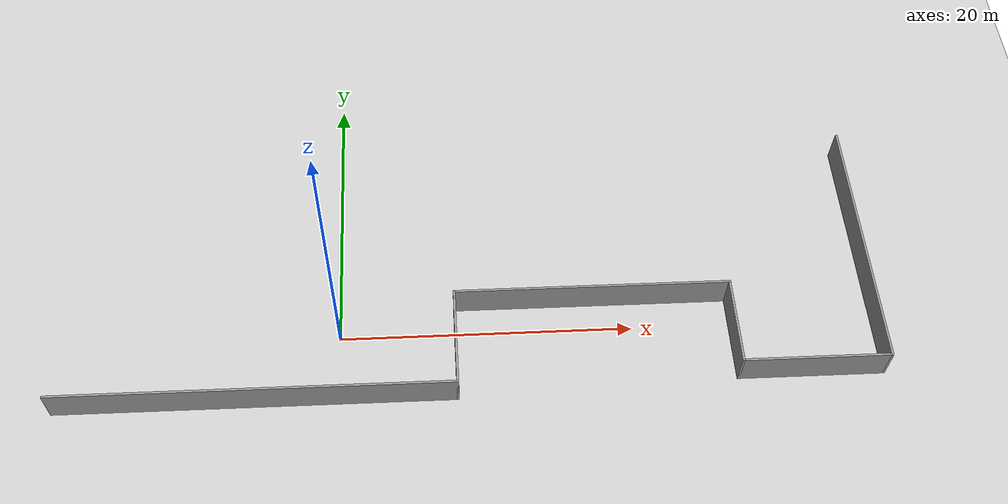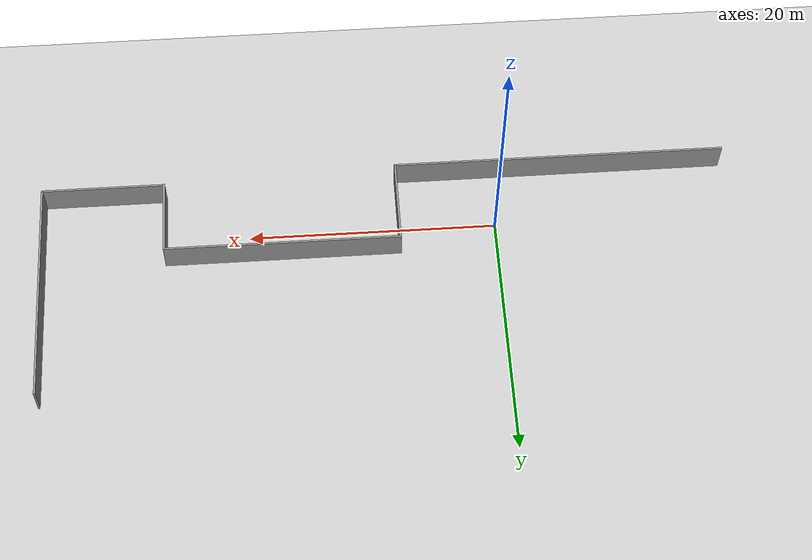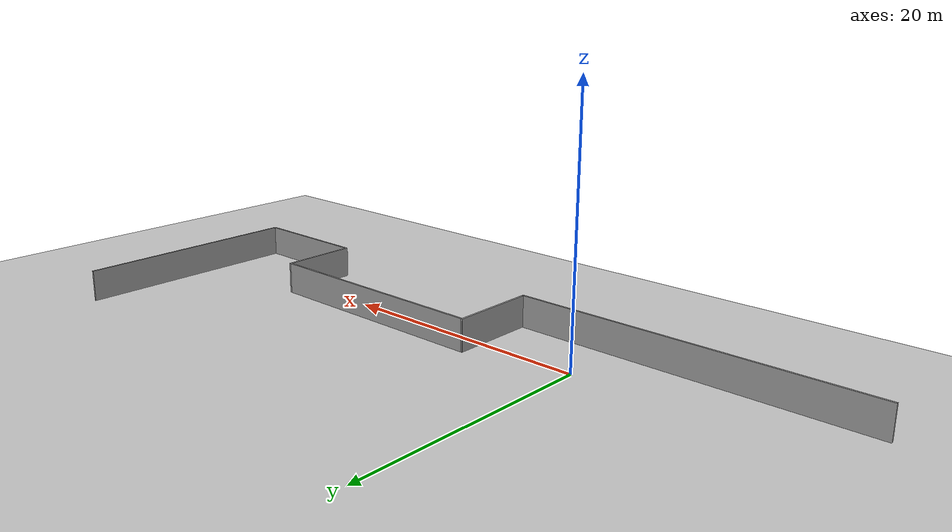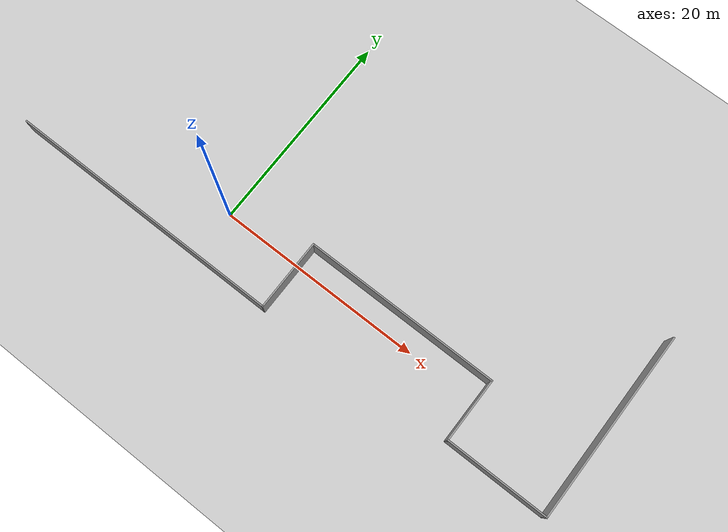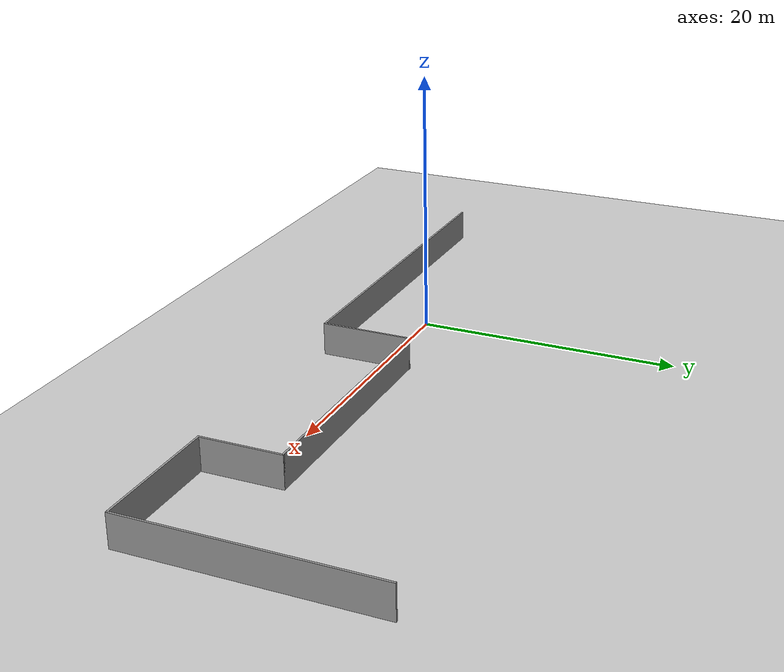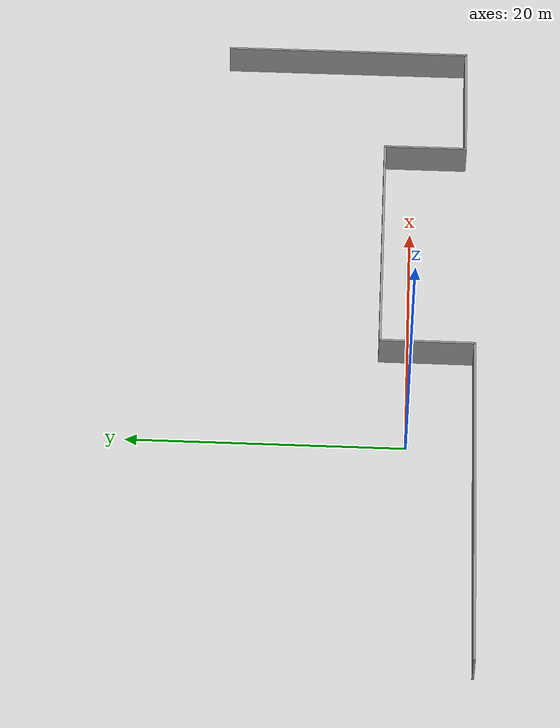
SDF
<sdf version="1.6">
 <world name="default">
  <light name="sun" type="directional">
   <pose>0 0 10 0 -0 0</pose>
   <diffuse>0.8 0.8 0.8 1</diffuse>
   <specular>0.2 0.2 0.2 1</specular>
   <attenuation>
    <range>1000</range>
    <constant>0.9</constant>
    <linear>0.01</linear>
    <quadratic>0.001</quadratic>
   </attenuation>
   <direction>-0.5 0.1 -0.9</direction>
  </light>
  <model name="ground_plane">
   <static>1</static>
   <link name="link">
    <collision name="collision">
     <geometry><plane><normal>0 0 1</normal><size>100 100</size></plane></geometry>
     <surface>
      <contact><collide_bitmask>65535</collide_bitmask></contact>
      <friction><ode><mu>100</mu><mu2>50</mu2></ode></friction>
     </surface>
    </collision>
    <visual name="visual">
     <cast_shadows>0</cast_shadows>
     <geometry><plane><normal>0 0 1</normal><size>100 100</size></plane></geometry>
     <material>
      <script><uri>file://media/materials/scripts/gazebo.material</uri><name>Gazebo/Grey</name></script>
     </material>
    </visual>
   </link>
  </model>
  <gravity>0 0 -9.8</gravity>
  <magnetic_field>6e-06 2.3e-05 -4.2e-05</magnetic_field>
  <atmosphere type="adiabatic"/>
  <physics name="default_physics" default="0" type="ode">
   <max_step_size>0.001</max_step_size>
   <real_time_factor>1</real_time_factor>
   <real_time_update_rate>1000</real_time_update_rate>
  </physics>
  <scene><ambient>0.4 0.4 0.4 1</ambient><background>0.7 0.7 0.7 1</background><shadows>1</shadows></scene>
  <audio><device>default</device></audio>
  <spherical_coordinates>
   <surface_model>EARTH_WGS84</surface_model>
   <latitude_deg>0</latitude_deg>
   <longitude_deg>0</longitude_deg>
   <elevation>0</elevation>
   <heading_deg>0</heading_deg>
  </spherical_coordinates>
  <model name="build3">
   <pose>8.79812 4.73072 0 0 -0 0</pose>
   <link name="Wall_11">
    <collision name="Wall_11_Collision">
     <geometry><box><size>27 0.15 2.5</size></box></geometry>
     <pose>0 0 1.25 0 -0 0</pose>
    </collision>
    <visual name="Wall_11_Visual">
     <pose>0 0 1.25 0 -0 0</pose>
     <geometry><box><size>27 0.15 2.5</size></box></geometry>
     <material>
      <script><uri>file://media/materials/scripts/gazebo.material</uri><name>Gazebo/Grey</name></script>
      <ambient>1 1 1 1</ambient>
     </material>
     <meta><layer>0</layer></meta>
    </visual>
    <pose>-14.35 -9.55 0 0 -0 0</pose>
   </link>
   <link name="Wall_12">
    <collision name="Wall_12_Collision">
     <geometry><box><size>7 0.15 2.5</size></box></geometry>
     <pose>0 0 1.25 0 -0 0</pose>
    </collision>
    <visual name="Wall_12_Visual">
     <pose>0 0 1.25 0 -0 0</pose>
     <geometry><box><size>7 0.15 2.5</size></box></geometry>
     <material>
      <script><uri>file://media/materials/scripts/gazebo.material</uri><name>Gazebo/Grey</name></script>
      <ambient>1 1 1 1</ambient>
     </material>
     <meta><layer>0</layer></meta>
    </visual>
    <pose>-0.925 -6.125 0 0 -0 1.5708</pose>
   </link>
   <link name="Wall_13">
    <collision name="Wall_13_Collision">
     <geometry><box><size>19 0.15 2.5</size></box></geometry>
     <pose>0 0 1.25 0 -0 0</pose>
    </collision>
    <visual name="Wall_13_Visual">
     <pose>0 0 1.25 0 -0 0</pose>
     <geometry><box><size>19 0.15 2.5</size></box></geometry>
     <material>
      <script><uri>file://media/materials/scripts/gazebo.material</uri><name>Gazebo/Grey</name></script>
      <ambient>1 1 1 1</ambient>
     </material>
     <meta><layer>0</layer></meta>
    </visual>
    <pose>8.5 -2.7 0 0 -0 0</pose>
   </link>
   <link name="Wall_14">
    <collision name="Wall_14_Collision">
     <geometry><box><size>6.25 0.15 2.5</size></box></geometry>
     <pose>0 0 1.25 0 -0 0</pose>
    </collision>
    <visual name="Wall_14_Visual">
     <pose>0 0 1.25 0 -0 0</pose>
     <geometry><box><size>6.25 0.15 2.5</size></box></geometry>
     <material>
      <script><uri>file://media/materials/scripts/gazebo.material</uri><name>Gazebo/Grey</name></script>
      <ambient>1 1 1 1</ambient>
     </material>
     <meta><layer>0</layer></meta>
    </visual>
    <pose>17.925 -5.75 0 0 -0 -1.5708</pose>
   </link>
   <link name="Wall_15">
    <collision name="Wall_15_Collision">
     <geometry><box><size>10 0.15 2.5</size></box></geometry>
     <pose>0 0 1.25 0 -0 0</pose>
    </collision>
    <visual name="Wall_15_Visual">
     <pose>0 0 1.25 0 -0 0</pose>
     <geometry><box><size>10 0.15 2.5</size></box></geometry>
     <material>
      <script><uri>file://media/materials/scripts/gazebo.material</uri><name>Gazebo/Grey</name></script>
      <ambient>1 1 1 1</ambient>
     </material>
     <meta><layer>0</layer></meta>
    </visual>
    <pose>22.85 -8.8 0 0 -0 0</pose>
   </link>
   <link name="Wall_16">
    <collision name="Wall_16_Collision">
     <geometry><box><size>18.5 0.15 2.5</size></box></geometry>
     <pose>0 0 1.25 0 -0 0</pose>
    </collision>
    <visual name="Wall_16_Visual">
     <pose>0 0 1.25 0 -0 0</pose>
     <geometry><box><size>18.5 0.15 2.5</size></box></geometry>
     <material>
      <script><uri>file://media/materials/scripts/gazebo.material</uri><name>Gazebo/Grey</name></script>
      <ambient>1 1 1 1</ambient>
     </material>
     <meta><layer>0</layer></meta>
    </visual>
    <pose>27.775 0.375 0 0 -0 1.5708</pose>
   </link>
   <static>1</static>
  </model>
 </world>
</sdf>
